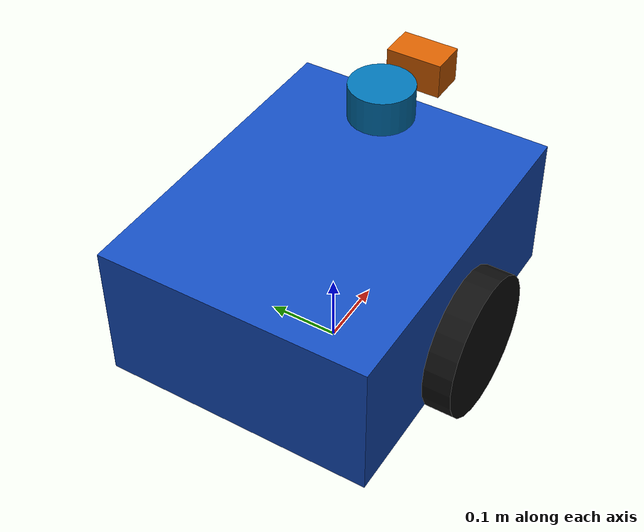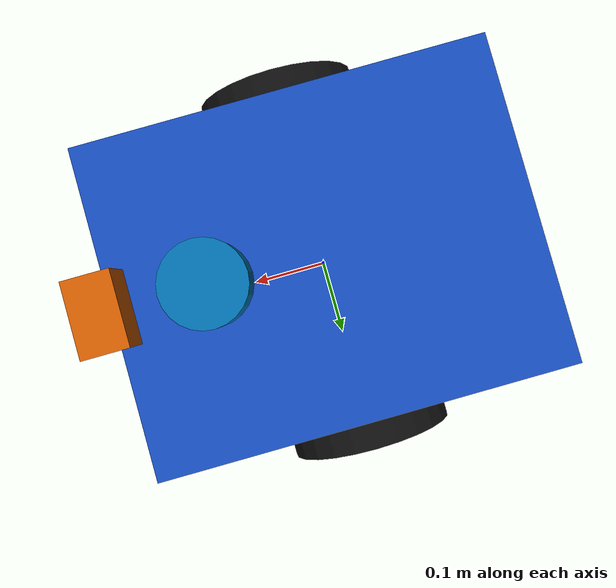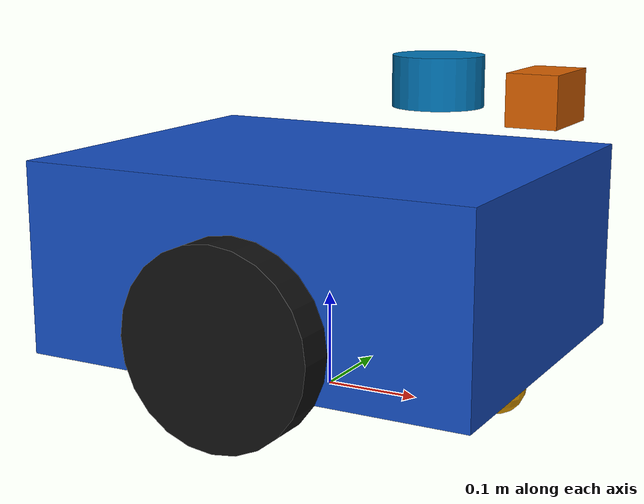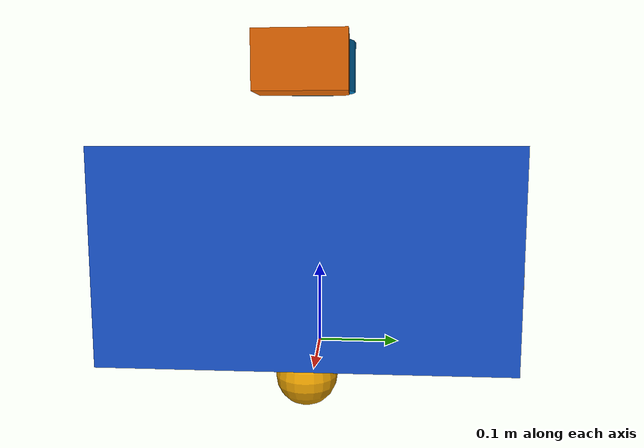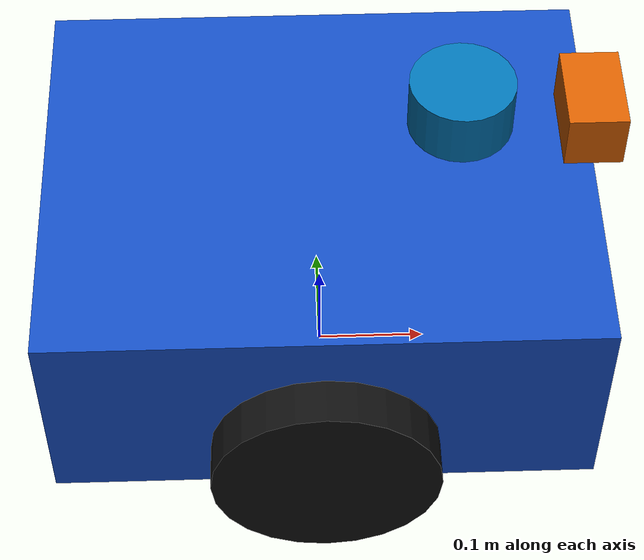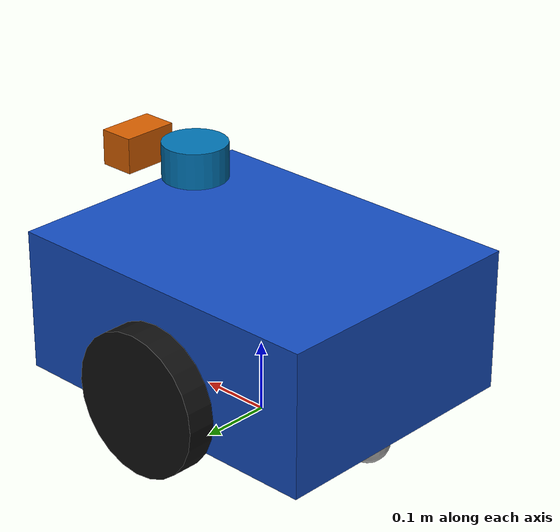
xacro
<?xml version='1.0' encoding='utf-8'?>
<robot xmlns:xacro="http://www.ros.org/wiki/xacro" name="research_robot">
  <xacro:property name="wheel_radius" value="0.10" />
  <xacro:property name="wheel_width" value="0.04" />
  <xacro:property name="wheel_separation" value="0.42" />
  <link name="base_footprint" />
  <joint name="base_footprint_joint" type="fixed">
    <parent link="base_footprint" />
    <child link="base_link" />
    <origin xyz="0 0 0.10" />
  </joint>
  <link name="base_link">
    <inertial>
      <mass value="8.0" />
      <origin xyz="0 0 0.05" />
      <inertia ixx="0.16" ixy="0" ixz="0" iyy="0.22" iyz="0" izz="0.28" />
    </inertial>
    <collision>
      <origin xyz="0 0 0.05" />
      <geometry>
        <box size="0.48 0.38 0.20" />
      </geometry>
    </collision>
    <visual>
      <origin xyz="0 0 0.05" />
      <geometry>
        <box size="0.48 0.38 0.20" />
      </geometry>
      <material name="blue">
        <color rgba="0.08 0.30 0.75 1" />
      </material>
    </visual>
  </link>
  <xacro:macro name="wheel" params="side sign">
    <link name="${side}_wheel_link">
      <inertial>
        <mass value="0.5" />
        <inertia ixx="0.002" ixy="0" ixz="0" iyy="0.002" iyz="0" izz="0.002" />
      </inertial>
      <collision>
        <geometry>
          <cylinder radius="${wheel_radius}" length="${wheel_width}" />
        </geometry>
        <origin rpy="1.57079632679 0 0" />
      </collision>
      <visual>
        <geometry>
          <cylinder radius="${wheel_radius}" length="${wheel_width}" />
        </geometry>
        <material name="dark">
          <color rgba="0.06 0.06 0.06 1" />
        </material>
        <origin rpy="1.57079632679 0 0" />
      </visual>
    </link>
    <joint name="${side}_wheel_joint" type="continuous">
      <parent link="base_link" />
      <child link="${side}_wheel_link" />
      <origin xyz="0 ${sign * wheel_separation / 2} 0" rpy="0 0 0" />
      <axis xyz="0 1 0" />
    </joint>
  </xacro:macro>
  <xacro:wheel side="left" sign="1" />
  <xacro:wheel side="right" sign="-1" />
  <link name="laser_link">
    <inertial>
      <mass value="0.1" />
      <inertia ixx="0.0001" ixy="0" ixz="0" iyy="0.0001" iyz="0" izz="0.0001" />
    </inertial>
    <visual>
      <geometry>
        <cylinder radius="0.045" length="0.05" />
      </geometry>
    </visual>
  </link>
  <joint name="laser_joint" type="fixed">
    <parent link="base_link" />
    <child link="laser_link" />
    <origin xyz="0.12 0 0.23" />
  </joint>
  <link name="camera_link">
    <inertial>
      <mass value="0.1" />
      <inertia ixx="0.0001" ixy="0" ixz="0" iyy="0.0001" iyz="0" izz="0.0001" />
    </inertial>
    <visual>
      <geometry>
        <box size="0.05 0.08 0.05" />
      </geometry>
    </visual>
  </link>
  <joint name="camera_joint" type="fixed">
    <parent link="base_link" />
    <child link="camera_link" />
    <origin xyz="0.23 0 0.22" />
  </joint>
  <link name="camera_optical_frame" />
  <joint name="camera_optical_joint" type="fixed">
    <parent link="camera_link" />
    <child link="camera_optical_frame" />
    <origin xyz="0 0 0" rpy="-1.57079632679 0 -1.57079632679" />
  </joint>
  <gazebo reference="base_link">
    <material>Gazebo/Blue</material>
  </gazebo>
  <gazebo reference="left_wheel_link">
    <mu1>1.0</mu1>
    <mu2>1.0</mu2>
  </gazebo>
  <gazebo reference="right_wheel_link">
    <mu1>1.0</mu1>
    <mu2>1.0</mu2>
  </gazebo>
  <gazebo reference="laser_joint">
    <preserveFixedJoint>true</preserveFixedJoint>
  </gazebo>
  <gazebo reference="camera_joint">
    <preserveFixedJoint>true</preserveFixedJoint>
  </gazebo>
  <gazebo reference="camera_optical_joint">
    <preserveFixedJoint>true</preserveFixedJoint>
  </gazebo>
  <gazebo>
    <plugin name="diff_drive" filename="libgazebo_ros_diff_drive.so">
      <ros>
        <remapping>cmd_vel:=cmd_vel</remapping>
        <remapping>odom:=odom</remapping>
      </ros>
      <update_rate>50</update_rate>
      <left_joint>left_wheel_joint</left_joint>
      <right_joint>right_wheel_joint</right_joint>
      <wheel_separation>${wheel_separation}</wheel_separation>
      <wheel_diameter>${2 * wheel_radius}</wheel_diameter>
      <max_wheel_torque>20</max_wheel_torque>
      <max_wheel_acceleration>1.0</max_wheel_acceleration>
      <publish_odom>true</publish_odom>
      <publish_odom_tf>true</publish_odom_tf>
      <publish_wheel_tf>false</publish_wheel_tf>
      <odometry_frame>odom</odometry_frame>
      <robot_base_frame>base_footprint</robot_base_frame>
      <odometry_source>0</odometry_source>
    </plugin>
    <plugin name="ground_truth" filename="libgazebo_ros_p3d.so">
      <ros>
        <remapping>odom:=ground_truth/odom</remapping>
      </ros>
      <body_name>base_footprint</body_name>
      <frame_name>world</frame_name>
      <topic_name>ground_truth/odom</topic_name>
      <update_rate>50</update_rate>
      <gaussian_noise>0.0</gaussian_noise>
    </plugin>
  </gazebo>
  <gazebo reference="laser_link">
    <sensor name="scan_sensor" type="ray">
      <always_on>true</always_on>
      <update_rate>15</update_rate>
      <visualize>false</visualize>
      <ray>
        <scan>
          <horizontal>
            <samples>720</samples>
            <resolution>1</resolution>
            <min_angle>-3.14159265</min_angle>
            <max_angle>3.14159265</max_angle>
          </horizontal>
        </scan>
        <range>
          <min>0.10</min>
          <max>20.0</max>
          <resolution>0.01</resolution>
        </range>
      </ray>
      <plugin name="scan_plugin" filename="libgazebo_ros_ray_sensor.so">
        <ros>
          <remapping>~/out:=sim/scan</remapping>
        </ros>
        <output_type>sensor_msgs/LaserScan</output_type>
        <frame_name>laser_link</frame_name>
      </plugin>
    </sensor>
  </gazebo>
  <gazebo reference="camera_link">
    <sensor name="rgb_camera" type="camera">
      <always_on>true</always_on>
      <update_rate>10</update_rate>
      <camera>
        <horizontal_fov>1.0472</horizontal_fov>
        <image>
          <width>320</width>
          <height>240</height>
          <format>R8G8B8</format>
        </image>
        <clip>
          <near>0.05</near>
          <far>80.0</far>
        </clip>
      </camera>
      <plugin name="rgb_camera_plugin" filename="libgazebo_ros_camera.so">
        <camera_name>front_camera</camera_name>
        <frame_name>camera_optical_frame</frame_name>
      </plugin>
    </sensor>
  </gazebo>
  <link name="rear_caster">
    <inertial>
      <mass value=".05" />
      <inertia ixx=".00002" iyy=".00002" izz=".00002" ixy="0" ixz="0" iyz="0" />
    </inertial>
    <collision>
      <geometry>
        <sphere radius=".03" />
      </geometry>
    </collision>
    <visual>
      <geometry>
        <sphere radius=".03" />
      </geometry>
    </visual>
  </link>
  <joint name="rear_caster_joint" type="fixed">
    <parent link="base_link" />
    <child link="rear_caster" />
    <origin xyz="-0.19 0 -.07" />
  </joint>
  <gazebo reference="rear_caster">
    <mu1>.01</mu1>
    <mu2>.01</mu2>
  </gazebo>
  <link name="front_caster">
    <inertial>
      <mass value=".05" />
      <inertia ixx=".00002" iyy=".00002" izz=".00002" ixy="0" ixz="0" iyz="0" />
    </inertial>
    <collision>
      <geometry>
        <sphere radius=".03" />
      </geometry>
    </collision>
    <visual>
      <geometry>
        <sphere radius=".03" />
      </geometry>
    </visual>
  </link>
  <joint name="front_caster_joint" type="fixed">
    <parent link="base_link" />
    <child link="front_caster" />
    <origin xyz="0.19 0 -.07" />
  </joint>
  <gazebo reference="front_caster">
    <mu1>.01</mu1>
    <mu2>.01</mu2>
  </gazebo>
</robot>
